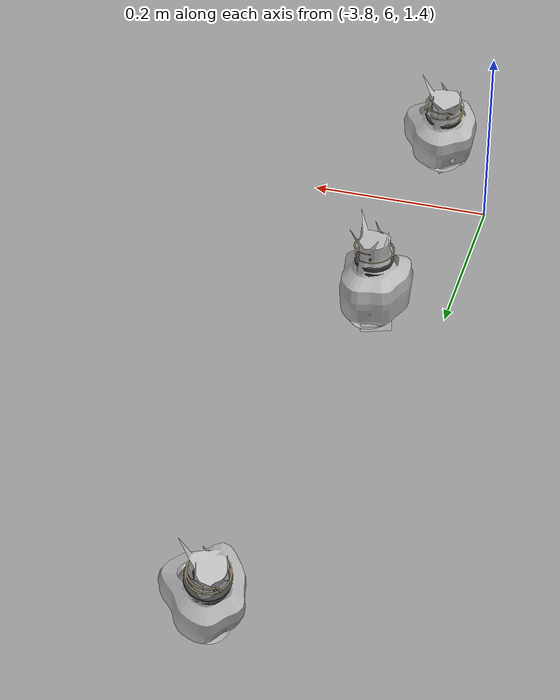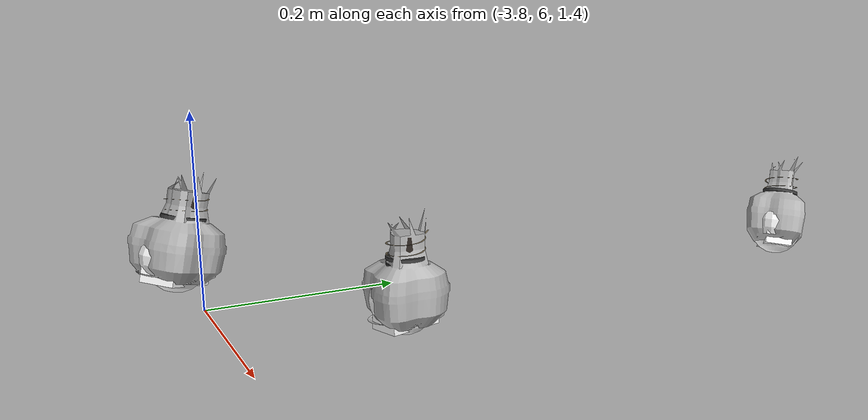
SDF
<sdf version="1.11">
 <world name="peach_orchard">
  <model name="ground">
   <static>true</static>
   <link name="link">
    <visual name="soil">
     <geometry><plane><normal>0 0 1</normal><size>32 22</size></plane></geometry>
     <material>
      <ambient>1 1 1 1</ambient>
      <diffuse>1 1 1 1</diffuse>
      <specular>0.1 0.1 0.1 1</specular>
      <pbr>
       <metal>
        <albedo_map>textures/soil_albedo.png</albedo_map>
        <normal_map type="tangent">textures/soil_normal.png</normal_map>
        <roughness>0.95</roughness>
        <metalness>0</metalness>
       </metal>
      </pbr>
     </material>
    </visual>
    <collision name="c_soil">
     <geometry><plane><normal>0 0 1</normal><size>32 22</size></plane></geometry>
    </collision>
   </link>
  </model>
  <model name="peach_tree_r1_t6_00">
   <pose>-3.69257 6.65264 1.40835 0 0.380328 2.22975</pose>
   <static>true</static>
   <link name="bag">
    <visual name="bag_mesh">
     <pose>0 0 0.046116 0 0 0</pose>
     <geometry>
      <mesh><uri>model://peach_sim/meshes/bagged_peach.glb</uri><scale>0.945647 1.01773 1.04809</scale></mesh>
     </geometry>
    </visual>
    <visual name="body">
     <pose>0 0 0.028116 0 0 0</pose>
     <geometry><ellipsoid><radii>0.0354618 0.026461 0.0303653</radii></ellipsoid></geometry>
     <material>
      <ambient>1 1 1 1</ambient>
      <diffuse>1 1 1 1</diffuse>
      <specular>0.1 0.1 0.1 1</specular>
      <pbr>
       <metal>
        <albedo_map>textures/paper_bag_albedo.png</albedo_map>
        <normal_map type="tangent">textures/paper_bag_normal.png</normal_map>
        <roughness>0.72</roughness>
        <metalness>0</metalness>
       </metal>
      </pbr>
     </material>
    </visual>
    <visual name="bottom_fold">
     <pose>0 0 0.012 0 0 0.35</pose>
     <geometry><box><size>0.0549657 0.0304301 0.022</size></box></geometry>
     <material>
      <ambient>1 1 1 1</ambient>
      <diffuse>1 1 1 1</diffuse>
      <specular>0.1 0.1 0.1 1</specular>
      <pbr>
       <metal>
        <albedo_map>textures/paper_bag_albedo.png</albedo_map>
        <normal_map type="tangent">textures/paper_bag_normal.png</normal_map>
        <roughness>0.8</roughness>
        <metalness>0</metalness>
       </metal>
      </pbr>
     </material>
    </visual>
    <visual name="fruit">
     <pose>0 0 0.0219806 0 0 0</pose>
     <geometry><sphere><radius>0.0290998</radius></sphere></geometry>
     <material>
      <ambient>1 1 1 1</ambient>
      <diffuse>1 1 1 1</diffuse>
      <specular>0.1 0.1 0.1 1</specular>
      <pbr>
       <metal>
        <albedo_map>textures/fruit_skin_albedo.png</albedo_map>
        <normal_map type="tangent">textures/fruit_skin_normal.png</normal_map>
        <roughness>0.55</roughness>
        <metalness>0</metalness>
       </metal>
      </pbr>
     </material>
    </visual>
    <visual name="neck">
     <pose>0 0 0.065232 0 0 0</pose>
     <geometry><cylinder><radius>0.013</radius><length>0.018</length></cylinder></geometry>
     <material>
      <ambient>1 1 1 1</ambient>
      <diffuse>1 1 1 1</diffuse>
      <specular>0.1 0.1 0.1 1</specular>
      <pbr>
       <metal>
        <albedo_map>textures/paper_bag_albedo.png</albedo_map>
        <normal_map type="tangent">textures/paper_bag_normal.png</normal_map>
        <roughness>0.75</roughness>
        <metalness>0</metalness>
       </metal>
      </pbr>
     </material>
    </visual>
    <visual name="gather">
     <pose>0 0 0.046232 0 0 0</pose>
     <geometry><cylinder><radius>0.019</radius><length>0.02</length></cylinder></geometry>
     <material>
      <ambient>1 1 1 1</ambient>
      <diffuse>1 1 1 1</diffuse>
      <specular>0.1 0.1 0.1 1</specular>
      <pbr>
       <metal>
        <albedo_map>textures/paper_bag_albedo.png</albedo_map>
        <normal_map type="tangent">textures/paper_bag_normal.png</normal_map>
        <roughness>0.8</roughness>
        <metalness>0</metalness>
       </metal>
      </pbr>
     </material>
    </visual>
    <visual name="inner_paper">
     <pose>0 0 0.070232 0 0 0</pose>
     <geometry><cylinder><radius>0.01</radius><length>0.008</length></cylinder></geometry>
     <material>
      <ambient>0.180392 0.14902 0.133333 1</ambient>
      <diffuse>0.180392 0.14902 0.133333 1</diffuse>
      <specular>0.1 0.1 0.1 1</specular>
     </material>
    </visual>
    <visual name="wire_0">
     <pose>0 0 0.060232 0 0 0</pose>
     <geometry><cylinder><radius>0.0205</radius><length>0.0035</length></cylinder></geometry>
     <material>
      <ambient>0.25 0.25 0.25 1</ambient>
      <diffuse>0.25 0.25 0.25 1</diffuse>
      <specular>0.1 0.1 0.1 1</specular>
     </material>
    </visual>
    <visual name="wire_1">
     <pose>0 0 0.067232 0 0 0</pose>
     <geometry><cylinder><radius>0.0205</radius><length>0.0035</length></cylinder></geometry>
     <material>
      <ambient>0.25 0.25 0.25 1</ambient>
      <diffuse>0.25 0.25 0.25 1</diffuse>
      <specular>0.1 0.1 0.1 1</specular>
     </material>
    </visual>
    <visual name="wire_tail">
     <pose>0.01 0 0.068232 0 0.521618 0</pose>
     <geometry><cylinder><radius>0.0012</radius><length>0.026</length></cylinder></geometry>
     <material>
      <ambient>0.25 0.25 0.25 1</ambient>
      <diffuse>0.25 0.25 0.25 1</diffuse>
      <specular>0.1 0.1 0.1 1</specular>
     </material>
    </visual>
    <collision name="c_body">
     <pose>0 0 0.028116 0 0 0</pose>
     <geometry><cylinder><radius>0.0354618</radius><length>0.056232</length></cylinder></geometry>
    </collision>
   </link>
  </model>
  <model name="peach_tree_r1_t6_07">
   <pose>-3.71884 6.18344 1.37739 0 0.0217126 1.55839</pose>
   <static>true</static>
   <link name="bag">
    <visual name="bag_mesh">
     <pose>0 0 0.0496221 0 0 0</pose>
     <geometry>
      <mesh><uri>model://peach_sim/meshes/bagged_peach.glb</uri><scale>1.03875 1.11555 1.12778</scale></mesh>
     </geometry>
    </visual>
    <visual name="body">
     <pose>0 0 0.0316221 0 0 0</pose>
     <geometry><ellipsoid><radii>0.0389533 0.0290043 0.0341519</radii></ellipsoid></geometry>
     <material>
      <ambient>1 1 1 1</ambient>
      <diffuse>1 1 1 1</diffuse>
      <specular>0.1 0.1 0.1 1</specular>
      <pbr>
       <metal>
        <albedo_map>textures/paper_bag_albedo.png</albedo_map>
        <normal_map type="tangent">textures/paper_bag_normal.png</normal_map>
        <roughness>0.72</roughness>
        <metalness>0</metalness>
       </metal>
      </pbr>
     </material>
    </visual>
    <visual name="bottom_fold">
     <pose>0 0 0.012 0 0 0.35</pose>
     <geometry><box><size>0.0603776 0.033355 0.022</size></box></geometry>
     <material>
      <ambient>1 1 1 1</ambient>
      <diffuse>1 1 1 1</diffuse>
      <specular>0.1 0.1 0.1 1</specular>
      <pbr>
       <metal>
        <albedo_map>textures/paper_bag_albedo.png</albedo_map>
        <normal_map type="tangent">textures/paper_bag_normal.png</normal_map>
        <roughness>0.8</roughness>
        <metalness>0</metalness>
       </metal>
      </pbr>
     </material>
    </visual>
    <visual name="fruit">
     <pose>0 0 0.0215714 0 0 0</pose>
     <geometry><sphere><radius>0.0286743</radius></sphere></geometry>
     <material>
      <ambient>1 1 1 1</ambient>
      <diffuse>1 1 1 1</diffuse>
      <specular>0.1 0.1 0.1 1</specular>
      <pbr>
       <metal>
        <albedo_map>textures/fruit_skin_albedo.png</albedo_map>
        <normal_map type="tangent">textures/fruit_skin_normal.png</normal_map>
        <roughness>0.55</roughness>
        <metalness>0</metalness>
       </metal>
      </pbr>
     </material>
    </visual>
    <visual name="neck">
     <pose>0 0 0.0722442 0 0 0</pose>
     <geometry><cylinder><radius>0.013</radius><length>0.018</length></cylinder></geometry>
     <material>
      <ambient>1 1 1 1</ambient>
      <diffuse>1 1 1 1</diffuse>
      <specular>0.1 0.1 0.1 1</specular>
      <pbr>
       <metal>
        <albedo_map>textures/paper_bag_albedo.png</albedo_map>
        <normal_map type="tangent">textures/paper_bag_normal.png</normal_map>
        <roughness>0.75</roughness>
        <metalness>0</metalness>
       </metal>
      </pbr>
     </material>
    </visual>
    <visual name="gather">
     <pose>0 0 0.0532442 0 0 0</pose>
     <geometry><cylinder><radius>0.019</radius><length>0.02</length></cylinder></geometry>
     <material>
      <ambient>1 1 1 1</ambient>
      <diffuse>1 1 1 1</diffuse>
      <specular>0.1 0.1 0.1 1</specular>
      <pbr>
       <metal>
        <albedo_map>textures/paper_bag_albedo.png</albedo_map>
        <normal_map type="tangent">textures/paper_bag_normal.png</normal_map>
        <roughness>0.8</roughness>
        <metalness>0</metalness>
       </metal>
      </pbr>
     </material>
    </visual>
    <visual name="inner_paper">
     <pose>0 0 0.0772442 0 0 0</pose>
     <geometry><cylinder><radius>0.01</radius><length>0.008</length></cylinder></geometry>
     <material>
      <ambient>0.180392 0.14902 0.133333 1</ambient>
      <diffuse>0.180392 0.14902 0.133333 1</diffuse>
      <specular>0.1 0.1 0.1 1</specular>
     </material>
    </visual>
    <visual name="wire_0">
     <pose>0 0 0.0672442 0 0 0</pose>
     <geometry><cylinder><radius>0.0205</radius><length>0.0035</length></cylinder></geometry>
     <material>
      <ambient>0.25 0.25 0.25 1</ambient>
      <diffuse>0.25 0.25 0.25 1</diffuse>
      <specular>0.1 0.1 0.1 1</specular>
     </material>
    </visual>
    <visual name="wire_1">
     <pose>0 0 0.0742442 0 0 0</pose>
     <geometry><cylinder><radius>0.0205</radius><length>0.0035</length></cylinder></geometry>
     <material>
      <ambient>0.25 0.25 0.25 1</ambient>
      <diffuse>0.25 0.25 0.25 1</diffuse>
      <specular>0.1 0.1 0.1 1</specular>
     </material>
    </visual>
    <visual name="wire_tail">
     <pose>0.01 0 0.0752442 0 0.521618 0</pose>
     <geometry><cylinder><radius>0.0012</radius><length>0.026</length></cylinder></geometry>
     <material>
      <ambient>0.25 0.25 0.25 1</ambient>
      <diffuse>0.25 0.25 0.25 1</diffuse>
      <specular>0.1 0.1 0.1 1</specular>
     </material>
    </visual>
    <collision name="c_body">
     <pose>0 0 0.0316221 0 0 0</pose>
     <geometry><cylinder><radius>0.0389533</radius><length>0.0632442</length></cylinder></geometry>
    </collision>
   </link>
  </model>
  <model name="peach_tree_r1_t6_08">
   <pose>-3.73651 5.96355 1.45 0 0.252803 2.01923</pose>
   <static>true</static>
   <link name="bag">
    <visual name="bag_mesh">
     <pose>0 0 0.0435424 0 0 0</pose>
     <geometry>
      <mesh><uri>model://peach_sim/meshes/bagged_peach.glb</uri><scale>0.983915 1.14747 0.989601</scale></mesh>
     </geometry>
    </visual>
    <visual name="body">
     <pose>0 0 0.0255424 0 0 0</pose>
     <geometry><ellipsoid><radii>0.0368968 0.0298341 0.0275858</radii></ellipsoid></geometry>
     <material>
      <ambient>1 1 1 1</ambient>
      <diffuse>1 1 1 1</diffuse>
      <specular>0.1 0.1 0.1 1</specular>
      <pbr>
       <metal>
        <albedo_map>textures/paper_bag_albedo.png</albedo_map>
        <normal_map type="tangent">textures/paper_bag_normal.png</normal_map>
        <roughness>0.72</roughness>
        <metalness>0</metalness>
       </metal>
      </pbr>
     </material>
    </visual>
    <visual name="bottom_fold">
     <pose>0 0 0.012 0 0 0.35</pose>
     <geometry><box><size>0.0571901 0.0343093 0.022</size></box></geometry>
     <material>
      <ambient>1 1 1 1</ambient>
      <diffuse>1 1 1 1</diffuse>
      <specular>0.1 0.1 0.1 1</specular>
      <pbr>
       <metal>
        <albedo_map>textures/paper_bag_albedo.png</albedo_map>
        <normal_map type="tangent">textures/paper_bag_normal.png</normal_map>
        <roughness>0.8</roughness>
        <metalness>0</metalness>
       </metal>
      </pbr>
     </material>
    </visual>
    <visual name="fruit">
     <pose>0 0 0.0219263 0 0 0</pose>
     <geometry><sphere><radius>0.0290433</radius></sphere></geometry>
     <material>
      <ambient>1 1 1 1</ambient>
      <diffuse>1 1 1 1</diffuse>
      <specular>0.1 0.1 0.1 1</specular>
      <pbr>
       <metal>
        <albedo_map>textures/fruit_skin_albedo.png</albedo_map>
        <normal_map type="tangent">textures/fruit_skin_normal.png</normal_map>
        <roughness>0.55</roughness>
        <metalness>0</metalness>
       </metal>
      </pbr>
     </material>
    </visual>
    <visual name="neck">
     <pose>0 0 0.0600849 0 0 0</pose>
     <geometry><cylinder><radius>0.013</radius><length>0.018</length></cylinder></geometry>
     <material>
      <ambient>1 1 1 1</ambient>
      <diffuse>1 1 1 1</diffuse>
      <specular>0.1 0.1 0.1 1</specular>
      <pbr>
       <metal>
        <albedo_map>textures/paper_bag_albedo.png</albedo_map>
        <normal_map type="tangent">textures/paper_bag_normal.png</normal_map>
        <roughness>0.75</roughness>
        <metalness>0</metalness>
       </metal>
      </pbr>
     </material>
    </visual>
    <visual name="gather">
     <pose>0 0 0.0410849 0 0 0</pose>
     <geometry><cylinder><radius>0.019</radius><length>0.02</length></cylinder></geometry>
     <material>
      <ambient>1 1 1 1</ambient>
      <diffuse>1 1 1 1</diffuse>
      <specular>0.1 0.1 0.1 1</specular>
      <pbr>
       <metal>
        <albedo_map>textures/paper_bag_albedo.png</albedo_map>
        <normal_map type="tangent">textures/paper_bag_normal.png</normal_map>
        <roughness>0.8</roughness>
        <metalness>0</metalness>
       </metal>
      </pbr>
     </material>
    </visual>
    <visual name="inner_paper">
     <pose>0 0 0.0650849 0 0 0</pose>
     <geometry><cylinder><radius>0.01</radius><length>0.008</length></cylinder></geometry>
     <material>
      <ambient>0.180392 0.14902 0.133333 1</ambient>
      <diffuse>0.180392 0.14902 0.133333 1</diffuse>
      <specular>0.1 0.1 0.1 1</specular>
     </material>
    </visual>
    <visual name="wire_0">
     <pose>0 0 0.0550849 0 0 0</pose>
     <geometry><cylinder><radius>0.0205</radius><length>0.0035</length></cylinder></geometry>
     <material>
      <ambient>0.25 0.25 0.25 1</ambient>
      <diffuse>0.25 0.25 0.25 1</diffuse>
      <specular>0.1 0.1 0.1 1</specular>
     </material>
    </visual>
    <visual name="wire_1">
     <pose>0 0 0.0620849 0 0 0</pose>
     <geometry><cylinder><radius>0.0205</radius><length>0.0035</length></cylinder></geometry>
     <material>
      <ambient>0.25 0.25 0.25 1</ambient>
      <diffuse>0.25 0.25 0.25 1</diffuse>
      <specular>0.1 0.1 0.1 1</specular>
     </material>
    </visual>
    <visual name="wire_tail">
     <pose>0.01 0 0.0630849 0 0.521618 0</pose>
     <geometry><cylinder><radius>0.0012</radius><length>0.026</length></cylinder></geometry>
     <material>
      <ambient>0.25 0.25 0.25 1</ambient>
      <diffuse>0.25 0.25 0.25 1</diffuse>
      <specular>0.1 0.1 0.1 1</specular>
     </material>
    </visual>
    <collision name="c_body">
     <pose>0 0 0.0255424 0 0 0</pose>
     <geometry><cylinder><radius>0.0368968</radius><length>0.0510849</length></cylinder></geometry>
    </collision>
   </link>
  </model>
 </world>
</sdf>
